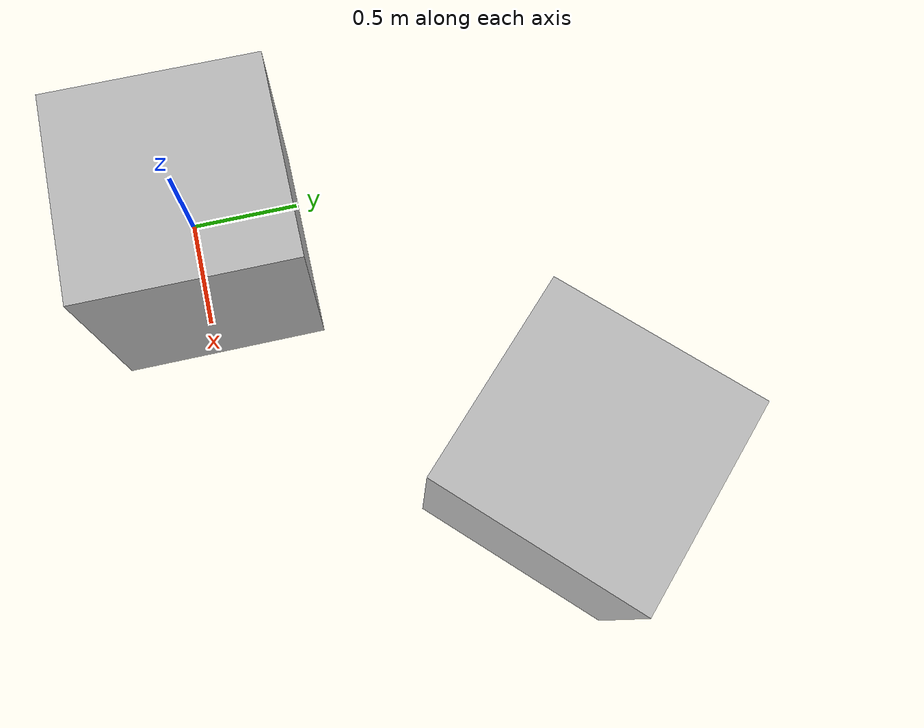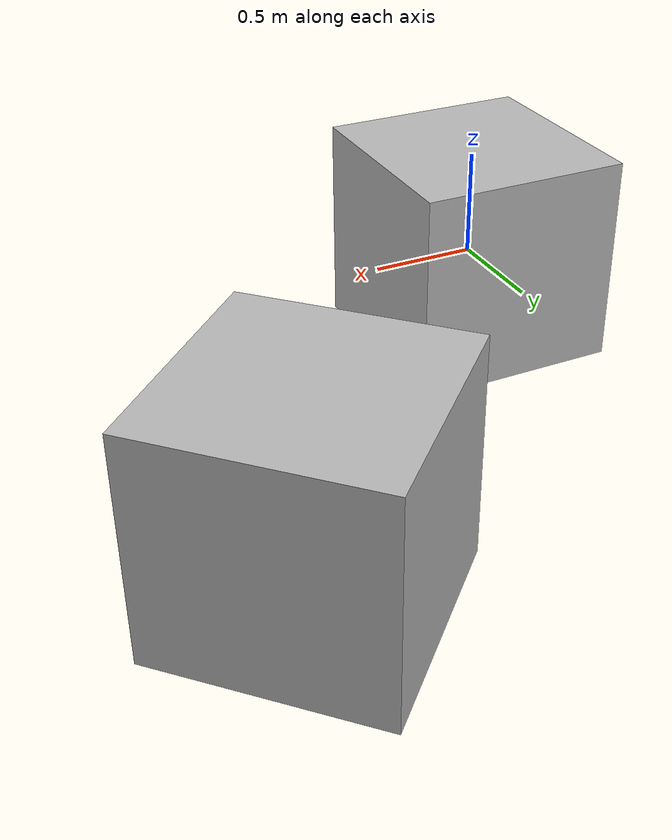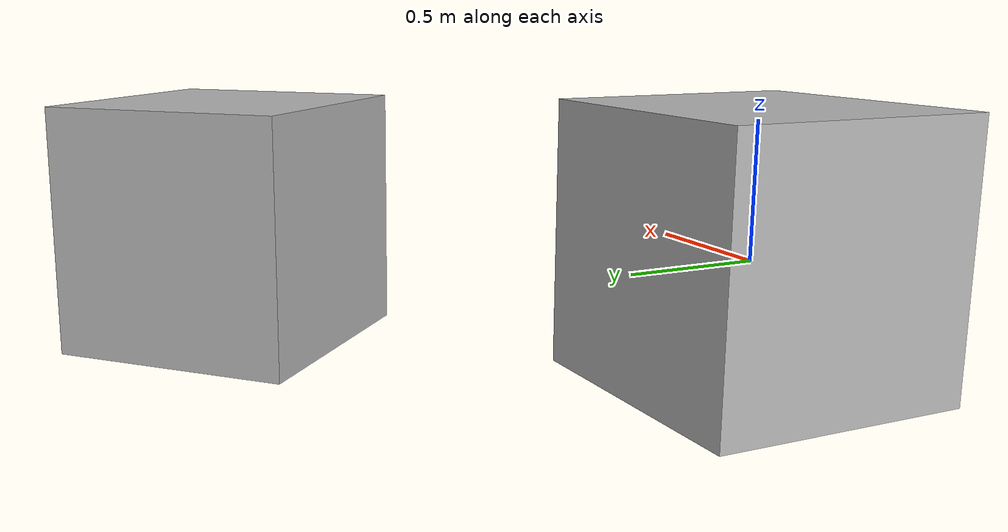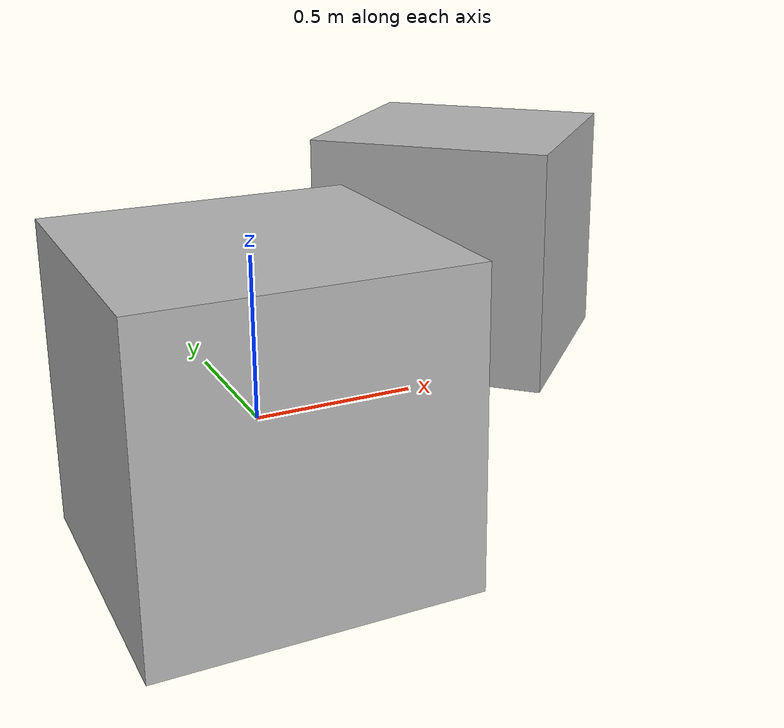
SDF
<?xml version="1.0"?>
<sdf version="1.4">
    <model name="joint_position_sdf">

        <link name="palm">
            <pose>0.0 0.0 0.05 0 0 0</pose>
            <inertial>
                <inertia>
                    <ixx>0.01</ixx>
                    <ixy>0</ixy>
                    <ixz>0</ixz>
                    <iyy>0.01</iyy>
                    <iyz>0</iyz>
                    <izz>0.01</izz>
                </inertia>
                <mass>0.5</mass>
            </inertial>
            <collision name="collision">
                <geometry>
                    <box>
                        <size>1 1 1</size>
                    </box>
                </geometry>
            </collision>
            <visual name="visual">
                <geometry>
                    <box>
                        <size>1 1 1</size>
                    </box>
                </geometry>
                <material>
                    <script>Gazebo/Red</script>
                </material>
            </visual>

        </link>
        <link name="left_finger">
            <pose>1.5 1.5 0 0 0 -0.78539</pose>
            <inertial>
                <inertia>
                    <ixx>0.01</ixx>
                    <ixy>0</ixy>
                    <ixz>0</ixz>
                    <iyy>0.01</iyy>
                    <iyz>0</iyz>
                    <izz>0.01</izz>
                </inertia>
                <mass>0.1</mass>
            </inertial>
            <collision name="collision">
                <geometry>
                    <box>
                        <size>1 1 1</size>
                    </box>
                </geometry>
            </collision>
            <visual name="visual">
                <geometry>
                    <box>
                        <size>1 1 1</size>
                    </box>
                </geometry>
                <material>
                    <script>Gazebo/Blue</script>
                </material>
            </visual>
        </link>

<joint name="r1" type="revolute">
            <pose>0 -0.15 0 0 0 0</pose>
            <child>left_finger</child>
            <parent>palm</parent>
            <axis>
                <limit>
                    <lower>-2</lower>
                    <upper>2</upper>
                </limit>
                <xyz>0 0 1</xyz>
            </axis>
        </joint>

<plugin name="joint_position" filename="libjoint_position.so"/>
    </model>
</sdf>
